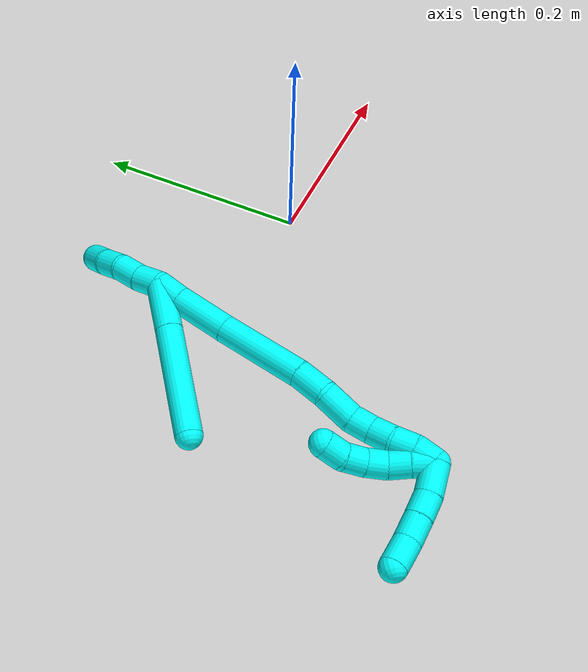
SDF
<sdf version="1.7">
 <world name="default">
  <model name="3">
   <static>0</static>
   <link name="3">
    <collision name="collision-cylinder-e_1_2_8">
     <pose>0.000381 -0.000232 0.023391 0.009909 0.016277 8.1e-05</pose>
     <geometry><cylinder><radius>0.0125</radius><length>0.046791</length></cylinder></geometry>
     <surface>
      <friction><ode><mu>1.16</mu><mu2>1.16</mu2><slip1>0</slip1><slip2>0</slip2></ode></friction>
      <contact><ode><kp>1e+06</kp><kd>1</kd><max_vel>0</max_vel><min_depth>0.001</min_depth></ode></contact>
     </surface>
    </collision>
    <visual name="visual-cylinder-e_1_2_8">
     <pose>0.000381 -0.000232 0.023391 0.009909 0.016277 8.1e-05</pose>
     <geometry><cylinder><radius>0.0125</radius><length>0.046791</length></cylinder></geometry>
     <material><ambient>0.003922 1 0.996078 1</ambient></material>
    </visual>
    <collision name="collision-cylinder-e_2_8_6">
     <pose>0.001874 -0.000468 0.098375 8.8e-05 0.021554 1e-06</pose>
     <geometry><cylinder><radius>0.0125</radius><length>0.103209</length></cylinder></geometry>
     <surface>
      <friction><ode><mu>1.16</mu><mu2>1.16</mu2><slip1>0</slip1><slip2>0</slip2></ode></friction>
      <contact><ode><kp>1e+06</kp><kd>1</kd><max_vel>0</max_vel><min_depth>0.001</min_depth></ode></contact>
     </surface>
    </collision>
    <visual name="visual-cylinder-e_2_8_6">
     <pose>0.001874 -0.000468 0.098375 8.8e-05 0.021554 1e-06</pose>
     <geometry><cylinder><radius>0.0125</radius><length>0.103209</length></cylinder></geometry>
     <material><ambient>0.003922 1 0.996078 1</ambient></material>
    </visual>
    <collision name="collision-cylinder-e_1_2_9">
     <pose>0.004599 0.007831 -0.007681 -2.34653 0.39695 -0.893407</pose>
     <geometry><cylinder><radius>0.0125</radius><length>0.023789</length></cylinder></geometry>
     <surface>
      <friction><ode><mu>1.16</mu><mu2>1.16</mu2><slip1>0</slip1><slip2>0</slip2></ode></friction>
      <contact><ode><kp>1e+06</kp><kd>1</kd><max_vel>0</max_vel><min_depth>0.001</min_depth></ode></contact>
     </surface>
    </collision>
    <visual name="visual-cylinder-e_1_2_9">
     <pose>0.004599 0.007831 -0.007681 -2.34653 0.39695 -0.893407</pose>
     <geometry><cylinder><radius>0.0125</radius><length>0.023789</length></cylinder></geometry>
     <material><ambient>0.003922 1 0.996078 1</ambient></material>
    </visual>
    <collision name="collision-cylinder-e_2_9_10">
     <pose>0.013508 0.022193 -0.024241 -2.5074 0.372867 -1.04333</pose>
     <geometry><cylinder><radius>0.0125</radius><length>0.023669</length></cylinder></geometry>
     <surface>
      <friction><ode><mu>1.16</mu><mu2>1.16</mu2><slip1>0</slip1><slip2>0</slip2></ode></friction>
      <contact><ode><kp>1e+06</kp><kd>1</kd><max_vel>0</max_vel><min_depth>0.001</min_depth></ode></contact>
     </surface>
    </collision>
    <visual name="visual-cylinder-e_2_9_10">
     <pose>0.013508 0.022193 -0.024241 -2.5074 0.372867 -1.04333</pose>
     <geometry><cylinder><radius>0.0125</radius><length>0.023669</length></cylinder></geometry>
     <material><ambient>0.003922 1 0.996078 1</ambient></material>
    </visual>
    <collision name="collision-cylinder-e_3_10_11">
     <pose>0.019561 0.037427 -0.040912 -2.30105 0.147935 -0.328643</pose>
     <geometry><cylinder><radius>0.0125</radius><length>0.023622</length></cylinder></geometry>
     <surface>
      <friction><ode><mu>1.16</mu><mu2>1.16</mu2><slip1>0</slip1><slip2>0</slip2></ode></friction>
      <contact><ode><kp>1e+06</kp><kd>1</kd><max_vel>0</max_vel><min_depth>0.001</min_depth></ode></contact>
     </surface>
    </collision>
    <visual name="visual-cylinder-e_3_10_11">
     <pose>0.019561 0.037427 -0.040912 -2.30105 0.147935 -0.328643</pose>
     <geometry><cylinder><radius>0.0125</radius><length>0.023622</length></cylinder></geometry>
     <material><ambient>0.003922 1 0.996078 1</ambient></material>
    </visual>
    <collision name="collision-cylinder-e_4_11_5">
     <pose>0.019687 0.057061 -0.058032 -2.27719 -0.111855 0.241556</pose>
     <geometry><cylinder><radius>0.0125</radius><length>0.028919</length></cylinder></geometry>
     <surface>
      <friction><ode><mu>1.16</mu><mu2>1.16</mu2><slip1>0</slip1><slip2>0</slip2></ode></friction>
      <contact><ode><kp>1e+06</kp><kd>1</kd><max_vel>0</max_vel><min_depth>0.001</min_depth></ode></contact>
     </surface>
    </collision>
    <visual name="visual-cylinder-e_4_11_5">
     <pose>0.019687 0.057061 -0.058032 -2.27719 -0.111855 0.241556</pose>
     <geometry><cylinder><radius>0.0125</radius><length>0.028919</length></cylinder></geometry>
     <material><ambient>0.003922 1 0.996078 1</ambient></material>
    </visual>
    <collision name="collision-cylinder-e_1_2_12">
     <pose>-0.006058 -0.004754 0.009944 0.445971 -0.502573 -0.116291</pose>
     <geometry><cylinder><radius>0.0125</radius><length>0.025156</length></cylinder></geometry>
     <surface>
      <friction><ode><mu>1.16</mu><mu2>1.16</mu2><slip1>0</slip1><slip2>0</slip2></ode></friction>
      <contact><ode><kp>1e+06</kp><kd>1</kd><max_vel>0</max_vel><min_depth>0.001</min_depth></ode></contact>
     </surface>
    </collision>
    <visual name="visual-cylinder-e_1_2_12">
     <pose>-0.006058 -0.004754 0.009944 0.445971 -0.502573 -0.116291</pose>
     <geometry><cylinder><radius>0.0125</radius><length>0.025156</length></cylinder></geometry>
     <material><ambient>0.003922 1 0.996078 1</ambient></material>
    </visual>
    <collision name="collision-cylinder-e_2_12_13">
     <pose>-0.024469 -0.02099 0.039849 0.522007 -0.492363 -0.13403</pose>
     <geometry><cylinder><radius>0.0125</radius><length>0.052261</length></cylinder></geometry>
     <surface>
      <friction><ode><mu>1.16</mu><mu2>1.16</mu2><slip1>0</slip1><slip2>0</slip2></ode></friction>
      <contact><ode><kp>1e+06</kp><kd>1</kd><max_vel>0</max_vel><min_depth>0.001</min_depth></ode></contact>
     </surface>
    </collision>
    <visual name="visual-cylinder-e_2_12_13">
     <pose>-0.024469 -0.02099 0.039849 0.522007 -0.492363 -0.13403</pose>
     <geometry><cylinder><radius>0.0125</radius><length>0.052261</length></cylinder></geometry>
     <material><ambient>0.003922 1 0.996078 1</ambient></material>
    </visual>
    <collision name="collision-cylinder-e_3_13_14">
     <pose>-0.055313 -0.051984 0.090573 0.565231 -0.469696 -0.138735</pose>
     <geometry><cylinder><radius>0.0125</radius><length>0.081709</length></cylinder></geometry>
     <surface>
      <friction><ode><mu>1.16</mu><mu2>1.16</mu2><slip1>0</slip1><slip2>0</slip2></ode></friction>
      <contact><ode><kp>1e+06</kp><kd>1</kd><max_vel>0</max_vel><min_depth>0.001</min_depth></ode></contact>
     </surface>
    </collision>
    <visual name="visual-cylinder-e_3_13_14">
     <pose>-0.055313 -0.051984 0.090573 0.565231 -0.469696 -0.138735</pose>
     <geometry><cylinder><radius>0.0125</radius><length>0.081709</length></cylinder></geometry>
     <material><ambient>0.003922 1 0.996078 1</ambient></material>
    </visual>
    <collision name="collision-cylinder-e_4_14_15">
     <pose>-0.079882 -0.077142 0.133162 0.445381 -0.434334 -0.099846</pose>
     <geometry><cylinder><radius>0.0125</radius><length>0.028891</length></cylinder></geometry>
     <surface>
      <friction><ode><mu>1.16</mu><mu2>1.16</mu2><slip1>0</slip1><slip2>0</slip2></ode></friction>
      <contact><ode><kp>1e+06</kp><kd>1</kd><max_vel>0</max_vel><min_depth>0.001</min_depth></ode></contact>
     </surface>
    </collision>
    <visual name="visual-cylinder-e_4_14_15">
     <pose>-0.079882 -0.077142 0.133162 0.445381 -0.434334 -0.099846</pose>
     <geometry><cylinder><radius>0.0125</radius><length>0.028891</length></cylinder></geometry>
     <material><ambient>0.003922 1 0.996078 1</ambient></material>
    </visual>
    <collision name="collision-cylinder-e_5_15_16">
     <pose>-0.095068 -0.08483 0.157013 0.168292 -0.641351 -0.056014</pose>
     <geometry><cylinder><radius>0.0125</radius><length>0.030444</length></cylinder></geometry>
     <surface>
      <friction><ode><mu>1.16</mu><mu2>1.16</mu2><slip1>0</slip1><slip2>0</slip2></ode></friction>
      <contact><ode><kp>1e+06</kp><kd>1</kd><max_vel>0</max_vel><min_depth>0.001</min_depth></ode></contact>
     </surface>
    </collision>
    <visual name="visual-cylinder-e_5_15_16">
     <pose>-0.095068 -0.08483 0.157013 0.168292 -0.641351 -0.056014</pose>
     <geometry><cylinder><radius>0.0125</radius><length>0.030444</length></cylinder></geometry>
     <material><ambient>0.003922 1 0.996078 1</ambient></material>
    </visual>
    <collision name="collision-cylinder-e_6_16_17">
     <pose>-0.110368 -0.090808 0.17606 0.510678 -0.655733 -0.177115</pose>
     <geometry><cylinder><radius>0.0125</radius><length>0.020312</length></cylinder></geometry>
     <surface>
      <friction><ode><mu>1.16</mu><mu2>1.16</mu2><slip1>0</slip1><slip2>0</slip2></ode></friction>
      <contact><ode><kp>1e+06</kp><kd>1</kd><max_vel>0</max_vel><min_depth>0.001</min_depth></ode></contact>
     </surface>
    </collision>
    <visual name="visual-cylinder-e_6_16_17">
     <pose>-0.110368 -0.090808 0.17606 0.510678 -0.655733 -0.177115</pose>
     <geometry><cylinder><radius>0.0125</radius><length>0.020312</length></cylinder></geometry>
     <material><ambient>0.003922 1 0.996078 1</ambient></material>
    </visual>
    <collision name="collision-cylinder-e_7_17_18">
     <pose>-0.12095 -0.100795 0.190243 0.701848 -0.437865 -0.162544</pose>
     <geometry><cylinder><radius>0.0125</radius><length>0.020704</length></cylinder></geometry>
     <surface>
      <friction><ode><mu>1.16</mu><mu2>1.16</mu2><slip1>0</slip1><slip2>0</slip2></ode></friction>
      <contact><ode><kp>1e+06</kp><kd>1</kd><max_vel>0</max_vel><min_depth>0.001</min_depth></ode></contact>
     </surface>
    </collision>
    <visual name="visual-cylinder-e_7_17_18">
     <pose>-0.12095 -0.100795 0.190243 0.701848 -0.437865 -0.162544</pose>
     <geometry><cylinder><radius>0.0125</radius><length>0.020704</length></cylinder></geometry>
     <material><ambient>0.003922 1 0.996078 1</ambient></material>
    </visual>
    <collision name="collision-cylinder-e_8_18_19">
     <pose>-0.131661 -0.111942 0.203499 0.696019 -0.672161 -0.252114</pose>
     <geometry><cylinder><radius>0.0125</radius><length>0.020306</length></cylinder></geometry>
     <surface>
      <friction><ode><mu>1.16</mu><mu2>1.16</mu2><slip1>0</slip1><slip2>0</slip2></ode></friction>
      <contact><ode><kp>1e+06</kp><kd>1</kd><max_vel>0</max_vel><min_depth>0.001</min_depth></ode></contact>
     </surface>
    </collision>
    <visual name="visual-cylinder-e_8_18_19">
     <pose>-0.131661 -0.111942 0.203499 0.696019 -0.672161 -0.252114</pose>
     <geometry><cylinder><radius>0.0125</radius><length>0.020306</length></cylinder></geometry>
     <material><ambient>0.003922 1 0.996078 1</ambient></material>
    </visual>
    <collision name="collision-cylinder-e_9_19_1">
     <pose>-0.143115 -0.120744 0.217476 0.439775 -0.532402 -0.121735</pose>
     <geometry><cylinder><radius>0.0125</radius><length>0.020218</length></cylinder></geometry>
     <surface>
      <friction><ode><mu>1.16</mu><mu2>1.16</mu2><slip1>0</slip1><slip2>0</slip2></ode></friction>
      <contact><ode><kp>1e+06</kp><kd>1</kd><max_vel>0</max_vel><min_depth>0.001</min_depth></ode></contact>
     </surface>
    </collision>
    <visual name="visual-cylinder-e_9_19_1">
     <pose>-0.143115 -0.120744 0.217476 0.439775 -0.532402 -0.121735</pose>
     <geometry><cylinder><radius>0.0125</radius><length>0.020218</length></cylinder></geometry>
     <material><ambient>0.003922 1 0.996078 1</ambient></material>
    </visual>
    <collision name="collision-cylinder-e_1_1_20">
     <pose>-0.143032 -0.120098 0.238233 -0.326084 0.36629 -0.06092</pose>
     <geometry><cylinder><radius>0.0125</radius><length>0.029116</length></cylinder></geometry>
     <surface>
      <friction><ode><mu>1.16</mu><mu2>1.16</mu2><slip1>0</slip1><slip2>0</slip2></ode></friction>
      <contact><ode><kp>1e+06</kp><kd>1</kd><max_vel>0</max_vel><min_depth>0.001</min_depth></ode></contact>
     </surface>
    </collision>
    <visual name="visual-cylinder-e_1_1_20">
     <pose>-0.143032 -0.120098 0.238233 -0.326084 0.36629 -0.06092</pose>
     <geometry><cylinder><radius>0.0125</radius><length>0.029116</length></cylinder></geometry>
     <material><ambient>0.003922 1 0.996078 1</ambient></material>
    </visual>
    <collision name="collision-cylinder-e_2_20_21">
     <pose>-0.13185 -0.112747 0.259695 -0.335808 0.580752 -0.101214</pose>
     <geometry><cylinder><radius>0.0125</radius><length>0.021754</length></cylinder></geometry>
     <surface>
      <friction><ode><mu>1.16</mu><mu2>1.16</mu2><slip1>0</slip1><slip2>0</slip2></ode></friction>
      <contact><ode><kp>1e+06</kp><kd>1</kd><max_vel>0</max_vel><min_depth>0.001</min_depth></ode></contact>
     </surface>
    </collision>
    <visual name="visual-cylinder-e_2_20_21">
     <pose>-0.13185 -0.112747 0.259695 -0.335808 0.580752 -0.101214</pose>
     <geometry><cylinder><radius>0.0125</radius><length>0.021754</length></cylinder></geometry>
     <material><ambient>0.003922 1 0.996078 1</ambient></material>
    </visual>
    <collision name="collision-cylinder-e_3_21_22">
     <pose>-0.119513 -0.106224 0.277233 -0.375265 0.5848 -0.114186</pose>
     <geometry><cylinder><radius>0.0125</radius><length>0.023078</length></cylinder></geometry>
     <surface>
      <friction><ode><mu>1.16</mu><mu2>1.16</mu2><slip1>0</slip1><slip2>0</slip2></ode></friction>
      <contact><ode><kp>1e+06</kp><kd>1</kd><max_vel>0</max_vel><min_depth>0.001</min_depth></ode></contact>
     </surface>
    </collision>
    <visual name="visual-cylinder-e_3_21_22">
     <pose>-0.119513 -0.106224 0.277233 -0.375265 0.5848 -0.114186</pose>
     <geometry><cylinder><radius>0.0125</radius><length>0.023078</length></cylinder></geometry>
     <material><ambient>0.003922 1 0.996078 1</ambient></material>
    </visual>
    <collision name="collision-cylinder-e_4_22_4">
     <pose>-0.104574 -0.100291 0.295696 -0.247804 0.717932 -0.093393</pose>
     <geometry><cylinder><radius>0.0125</radius><length>0.026052</length></cylinder></geometry>
     <surface>
      <friction><ode><mu>1.16</mu><mu2>1.16</mu2><slip1>0</slip1><slip2>0</slip2></ode></friction>
      <contact><ode><kp>1e+06</kp><kd>1</kd><max_vel>0</max_vel><min_depth>0.001</min_depth></ode></contact>
     </surface>
    </collision>
    <visual name="visual-cylinder-e_4_22_4">
     <pose>-0.104574 -0.100291 0.295696 -0.247804 0.717932 -0.093393</pose>
     <geometry><cylinder><radius>0.0125</radius><length>0.026052</length></cylinder></geometry>
     <material><ambient>0.003922 1 0.996078 1</ambient></material>
    </visual>
    <collision name="collision-cylinder-e_1_1_23">
     <pose>-0.14054 -0.118488 0.223108 -1.93144 0.879694 -1.19493</pose>
     <geometry><cylinder><radius>0.0125</radius><length>0.02</length></cylinder></geometry>
     <surface>
      <friction><ode><mu>1.16</mu><mu2>1.16</mu2><slip1>0</slip1><slip2>0</slip2></ode></friction>
      <contact><ode><kp>1e+06</kp><kd>1</kd><max_vel>0</max_vel><min_depth>0.001</min_depth></ode></contact>
     </surface>
    </collision>
    <visual name="visual-cylinder-e_1_1_23">
     <pose>-0.14054 -0.118488 0.223108 -1.93144 0.879694 -1.19493</pose>
     <geometry><cylinder><radius>0.0125</radius><length>0.02</length></cylinder></geometry>
     <material><ambient>0.003922 1 0.996078 1</ambient></material>
    </visual>
    <collision name="collision-cylinder-e_2_23_24">
     <pose>-0.125406 -0.106072 0.219076 -1.84046 0.837422 -1.05821</pose>
     <geometry><cylinder><radius>0.0125</radius><length>0.02</length></cylinder></geometry>
     <surface>
      <friction><ode><mu>1.16</mu><mu2>1.16</mu2><slip1>0</slip1><slip2>0</slip2></ode></friction>
      <contact><ode><kp>1e+06</kp><kd>1</kd><max_vel>0</max_vel><min_depth>0.001</min_depth></ode></contact>
     </surface>
    </collision>
    <visual name="visual-cylinder-e_2_23_24">
     <pose>-0.125406 -0.106072 0.219076 -1.84046 0.837422 -1.05821</pose>
     <geometry><cylinder><radius>0.0125</radius><length>0.02</length></cylinder></geometry>
     <material><ambient>0.003922 1 0.996078 1</ambient></material>
    </visual>
    <collision name="collision-cylinder-e_3_24_25">
     <pose>-0.109138 -0.095818 0.214568 -2.19251 1.08406 -1.72909</pose>
     <geometry><cylinder><radius>0.0125</radius><length>0.02</length></cylinder></geometry>
     <surface>
      <friction><ode><mu>1.16</mu><mu2>1.16</mu2><slip1>0</slip1><slip2>0</slip2></ode></friction>
      <contact><ode><kp>1e+06</kp><kd>1</kd><max_vel>0</max_vel><min_depth>0.001</min_depth></ode></contact>
     </surface>
    </collision>
    <visual name="visual-cylinder-e_3_24_25">
     <pose>-0.109138 -0.095818 0.214568 -2.19251 1.08406 -1.72909</pose>
     <geometry><cylinder><radius>0.0125</radius><length>0.02</length></cylinder></geometry>
     <material><ambient>0.003922 1 0.996078 1</ambient></material>
    </visual>
    <collision name="collision-cylinder-e_4_25_26">
     <pose>-0.090798 -0.090715 0.20901 -2.71109 1.25369 -2.55525</pose>
     <geometry><cylinder><radius>0.0125</radius><length>0.02</length></cylinder></geometry>
     <surface>
      <friction><ode><mu>1.16</mu><mu2>1.16</mu2><slip1>0</slip1><slip2>0</slip2></ode></friction>
      <contact><ode><kp>1e+06</kp><kd>1</kd><max_vel>0</max_vel><min_depth>0.001</min_depth></ode></contact>
     </surface>
    </collision>
    <visual name="visual-cylinder-e_4_25_26">
     <pose>-0.090798 -0.090715 0.20901 -2.71109 1.25369 -2.55525</pose>
     <geometry><cylinder><radius>0.0125</radius><length>0.02</length></cylinder></geometry>
     <material><ambient>0.003922 1 0.996078 1</ambient></material>
    </visual>
    <collision name="collision-cylinder-e_5_26_3">
     <pose>-0.072976 -0.08935 0.20063 -3.13012 0.982782 -3.12015</pose>
     <geometry><cylinder><radius>0.0125</radius><length>0.02</length></cylinder></geometry>
     <surface>
      <friction><ode><mu>1.16</mu><mu2>1.16</mu2><slip1>0</slip1><slip2>0</slip2></ode></friction>
      <contact><ode><kp>1e+06</kp><kd>1</kd><max_vel>0</max_vel><min_depth>0.001</min_depth></ode></contact>
     </surface>
    </collision>
    <visual name="visual-cylinder-e_5_26_3">
     <pose>-0.072976 -0.08935 0.20063 -3.13012 0.982782 -3.12015</pose>
     <geometry><cylinder><radius>0.0125</radius><length>0.02</length></cylinder></geometry>
     <material><ambient>0.003922 1 0.996078 1</ambient></material>
    </visual>
    <collision name="collision-sphere-3">
     <pose>-0.064656 -0.089286 0.195083 0 -0 0</pose>
     <geometry><sphere><radius>0.0125</radius></sphere></geometry>
     <surface>
      <friction><ode><mu>1.16</mu><mu2>1.16</mu2><slip1>0</slip1><slip2>0</slip2></ode></friction>
      <contact><ode><kp>1e+06</kp><kd>1</kd><max_vel>0</max_vel><min_depth>0.001</min_depth></ode></contact>
     </surface>
    </collision>
    <visual name="visual-sphere-3">
     <pose>-0.064656 -0.089286 0.195083 0 -0 0</pose>
     <geometry><sphere><radius>0.0125</radius></sphere></geometry>
     <material><ambient>0.003922 1 0.996078 1</ambient></material>
    </visual>
    <collision name="collision-sphere-26">
     <pose>-0.081297 -0.089413 0.206177 0 -0 0</pose>
     <geometry><sphere><radius>0.0125</radius></sphere></geometry>
     <surface>
      <friction><ode><mu>1.16</mu><mu2>1.16</mu2><slip1>0</slip1><slip2>0</slip2></ode></friction>
      <contact><ode><kp>1e+06</kp><kd>1</kd><max_vel>0</max_vel><min_depth>0.001</min_depth></ode></contact>
     </surface>
    </collision>
    <visual name="visual-sphere-26">
     <pose>-0.081297 -0.089413 0.206177 0 -0 0</pose>
     <geometry><sphere><radius>0.0125</radius></sphere></geometry>
     <material><ambient>0.003922 1 0.996078 1</ambient></material>
    </visual>
    <collision name="collision-sphere-25">
     <pose>-0.100299 -0.092016 0.211844 0 -0 0</pose>
     <geometry><sphere><radius>0.0125</radius></sphere></geometry>
     <surface>
      <friction><ode><mu>1.16</mu><mu2>1.16</mu2><slip1>0</slip1><slip2>0</slip2></ode></friction>
      <contact><ode><kp>1e+06</kp><kd>1</kd><max_vel>0</max_vel><min_depth>0.001</min_depth></ode></contact>
     </surface>
    </collision>
    <visual name="visual-sphere-25">
     <pose>-0.100299 -0.092016 0.211844 0 -0 0</pose>
     <geometry><sphere><radius>0.0125</radius></sphere></geometry>
     <material><ambient>0.003922 1 0.996078 1</ambient></material>
    </visual>
    <collision name="collision-sphere-24">
     <pose>-0.117977 -0.09962 0.217293 0 -0 0</pose>
     <geometry><sphere><radius>0.0125</radius></sphere></geometry>
     <surface>
      <friction><ode><mu>1.16</mu><mu2>1.16</mu2><slip1>0</slip1><slip2>0</slip2></ode></friction>
      <contact><ode><kp>1e+06</kp><kd>1</kd><max_vel>0</max_vel><min_depth>0.001</min_depth></ode></contact>
     </surface>
    </collision>
    <visual name="visual-sphere-24">
     <pose>-0.117977 -0.09962 0.217293 0 -0 0</pose>
     <geometry><sphere><radius>0.0125</radius></sphere></geometry>
     <material><ambient>0.003922 1 0.996078 1</ambient></material>
    </visual>
    <collision name="collision-sphere-23">
     <pose>-0.132835 -0.112524 0.220859 0 -0 0</pose>
     <geometry><sphere><radius>0.0125</radius></sphere></geometry>
     <surface>
      <friction><ode><mu>1.16</mu><mu2>1.16</mu2><slip1>0</slip1><slip2>0</slip2></ode></friction>
      <contact><ode><kp>1e+06</kp><kd>1</kd><max_vel>0</max_vel><min_depth>0.001</min_depth></ode></contact>
     </surface>
    </collision>
    <visual name="visual-sphere-23">
     <pose>-0.132835 -0.112524 0.220859 0 -0 0</pose>
     <geometry><sphere><radius>0.0125</radius></sphere></geometry>
     <material><ambient>0.003922 1 0.996078 1</ambient></material>
    </visual>
    <collision name="collision-sphere-4">
     <pose>-0.096005 -0.097885 0.305207 0 -0 0</pose>
     <geometry><sphere><radius>0.0125</radius></sphere></geometry>
     <surface>
      <friction><ode><mu>1.16</mu><mu2>1.16</mu2><slip1>0</slip1><slip2>0</slip2></ode></friction>
      <contact><ode><kp>1e+06</kp><kd>1</kd><max_vel>0</max_vel><min_depth>0.001</min_depth></ode></contact>
     </surface>
    </collision>
    <visual name="visual-sphere-4">
     <pose>-0.096005 -0.097885 0.305207 0 -0 0</pose>
     <geometry><sphere><radius>0.0125</radius></sphere></geometry>
     <material><ambient>0.003922 1 0.996078 1</ambient></material>
    </visual>
    <collision name="collision-sphere-22">
     <pose>-0.113143 -0.102697 0.286185 0 -0 0</pose>
     <geometry><sphere><radius>0.0125</radius></sphere></geometry>
     <surface>
      <friction><ode><mu>1.16</mu><mu2>1.16</mu2><slip1>0</slip1><slip2>0</slip2></ode></friction>
      <contact><ode><kp>1e+06</kp><kd>1</kd><max_vel>0</max_vel><min_depth>0.001</min_depth></ode></contact>
     </surface>
    </collision>
    <visual name="visual-sphere-22">
     <pose>-0.113143 -0.102697 0.286185 0 -0 0</pose>
     <geometry><sphere><radius>0.0125</radius></sphere></geometry>
     <material><ambient>0.003922 1 0.996078 1</ambient></material>
    </visual>
    <collision name="collision-sphere-21">
     <pose>-0.125883 -0.10975 0.268281 0 -0 0</pose>
     <geometry><sphere><radius>0.0125</radius></sphere></geometry>
     <surface>
      <friction><ode><mu>1.16</mu><mu2>1.16</mu2><slip1>0</slip1><slip2>0</slip2></ode></friction>
      <contact><ode><kp>1e+06</kp><kd>1</kd><max_vel>0</max_vel><min_depth>0.001</min_depth></ode></contact>
     </surface>
    </collision>
    <visual name="visual-sphere-21">
     <pose>-0.125883 -0.10975 0.268281 0 -0 0</pose>
     <geometry><sphere><radius>0.0125</radius></sphere></geometry>
     <material><ambient>0.003922 1 0.996078 1</ambient></material>
    </visual>
    <collision name="collision-sphere-20">
     <pose>-0.137818 -0.115744 0.251109 0 -0 0</pose>
     <geometry><sphere><radius>0.0125</radius></sphere></geometry>
     <surface>
      <friction><ode><mu>1.16</mu><mu2>1.16</mu2><slip1>0</slip1><slip2>0</slip2></ode></friction>
      <contact><ode><kp>1e+06</kp><kd>1</kd><max_vel>0</max_vel><min_depth>0.001</min_depth></ode></contact>
     </surface>
    </collision>
    <visual name="visual-sphere-20">
     <pose>-0.137818 -0.115744 0.251109 0 -0 0</pose>
     <geometry><sphere><radius>0.0125</radius></sphere></geometry>
     <material><ambient>0.003922 1 0.996078 1</ambient></material>
    </visual>
    <collision name="collision-sphere-11">
     <pose>0.021301 0.04613 -0.048705 0 -0 0</pose>
     <geometry><sphere><radius>0.0125</radius></sphere></geometry>
     <surface>
      <friction><ode><mu>1.16</mu><mu2>1.16</mu2><slip1>0</slip1><slip2>0</slip2></ode></friction>
      <contact><ode><kp>1e+06</kp><kd>1</kd><max_vel>0</max_vel><min_depth>0.001</min_depth></ode></contact>
     </surface>
    </collision>
    <visual name="visual-sphere-11">
     <pose>0.021301 0.04613 -0.048705 0 -0 0</pose>
     <geometry><sphere><radius>0.0125</radius></sphere></geometry>
     <material><ambient>0.003922 1 0.996078 1</ambient></material>
    </visual>
    <collision name="collision-sphere-10">
     <pose>0.01782 0.028724 -0.03312 0 -0 0</pose>
     <geometry><sphere><radius>0.0125</radius></sphere></geometry>
     <surface>
      <friction><ode><mu>1.16</mu><mu2>1.16</mu2><slip1>0</slip1><slip2>0</slip2></ode></friction>
      <contact><ode><kp>1e+06</kp><kd>1</kd><max_vel>0</max_vel><min_depth>0.001</min_depth></ode></contact>
     </surface>
    </collision>
    <visual name="visual-sphere-10">
     <pose>0.01782 0.028724 -0.03312 0 -0 0</pose>
     <geometry><sphere><radius>0.0125</radius></sphere></geometry>
     <material><ambient>0.003922 1 0.996078 1</ambient></material>
    </visual>
    <collision name="collision-sphere-6">
     <pose>0.002986 -0.000473 0.149968 0 -0 0</pose>
     <geometry><sphere><radius>0.0125</radius></sphere></geometry>
     <surface>
      <friction><ode><mu>1.16</mu><mu2>1.16</mu2><slip1>0</slip1><slip2>0</slip2></ode></friction>
      <contact><ode><kp>1e+06</kp><kd>1</kd><max_vel>0</max_vel><min_depth>0.001</min_depth></ode></contact>
     </surface>
    </collision>
    <visual name="visual-sphere-6">
     <pose>0.002986 -0.000473 0.149968 0 -0 0</pose>
     <geometry><sphere><radius>0.0125</radius></sphere></geometry>
     <material><ambient>0.003922 1 0.996078 1</ambient></material>
    </visual>
    <collision name="collision-sphere-9">
     <pose>0.009197 0.015663 -0.015363 0 -0 0</pose>
     <geometry><sphere><radius>0.0125</radius></sphere></geometry>
     <surface>
      <friction><ode><mu>1.16</mu><mu2>1.16</mu2><slip1>0</slip1><slip2>0</slip2></ode></friction>
      <contact><ode><kp>1e+06</kp><kd>1</kd><max_vel>0</max_vel><min_depth>0.001</min_depth></ode></contact>
     </surface>
    </collision>
    <visual name="visual-sphere-9">
     <pose>0.009197 0.015663 -0.015363 0 -0 0</pose>
     <geometry><sphere><radius>0.0125</radius></sphere></geometry>
     <material><ambient>0.003922 1 0.996078 1</ambient></material>
    </visual>
    <collision name="collision-sphere-2">
     <geometry><sphere><radius>0.0125</radius></sphere></geometry>
     <surface>
      <friction><ode><mu>1.16</mu><mu2>1.16</mu2><slip1>0</slip1><slip2>0</slip2></ode></friction>
      <contact><ode><kp>1e+06</kp><kd>1</kd><max_vel>0</max_vel><min_depth>0.001</min_depth></ode></contact>
     </surface>
    </collision>
    <visual name="visual-sphere-2">
     <geometry><sphere><radius>0.0125</radius></sphere></geometry>
     <material><ambient>0.003922 1 0.996078 1</ambient></material>
    </visual>
    <collision name="collision-sphere-19">
     <pose>-0.137983 -0.117036 0.209595 0 -0 0</pose>
     <geometry><sphere><radius>0.0125</radius></sphere></geometry>
     <surface>
      <friction><ode><mu>1.16</mu><mu2>1.16</mu2><slip1>0</slip1><slip2>0</slip2></ode></friction>
      <contact><ode><kp>1e+06</kp><kd>1</kd><max_vel>0</max_vel><min_depth>0.001</min_depth></ode></contact>
     </surface>
    </collision>
    <visual name="visual-sphere-19">
     <pose>-0.137983 -0.117036 0.209595 0 -0 0</pose>
     <geometry><sphere><radius>0.0125</radius></sphere></geometry>
     <material><ambient>0.003922 1 0.996078 1</ambient></material>
    </visual>
    <collision name="collision-sphere-8">
     <pose>0.000762 -0.000464 0.046782 0 -0 0</pose>
     <geometry><sphere><radius>0.0125</radius></sphere></geometry>
     <surface>
      <friction><ode><mu>1.16</mu><mu2>1.16</mu2><slip1>0</slip1><slip2>0</slip2></ode></friction>
      <contact><ode><kp>1e+06</kp><kd>1</kd><max_vel>0</max_vel><min_depth>0.001</min_depth></ode></contact>
     </surface>
    </collision>
    <visual name="visual-sphere-8">
     <pose>0.000762 -0.000464 0.046782 0 -0 0</pose>
     <geometry><sphere><radius>0.0125</radius></sphere></geometry>
     <material><ambient>0.003922 1 0.996078 1</ambient></material>
    </visual>
    <collision name="collision-sphere-5">
     <pose>0.018073 0.067992 -0.067359 0 -0 0</pose>
     <geometry><sphere><radius>0.0125</radius></sphere></geometry>
     <surface>
      <friction><ode><mu>1.16</mu><mu2>1.16</mu2><slip1>0</slip1><slip2>0</slip2></ode></friction>
      <contact><ode><kp>1e+06</kp><kd>1</kd><max_vel>0</max_vel><min_depth>0.001</min_depth></ode></contact>
     </surface>
    </collision>
    <visual name="visual-sphere-5">
     <pose>0.018073 0.067992 -0.067359 0 -0 0</pose>
     <geometry><sphere><radius>0.0125</radius></sphere></geometry>
     <material><ambient>0.003922 1 0.996078 1</ambient></material>
    </visual>
    <collision name="collision-sphere-12">
     <pose>-0.012117 -0.009509 0.019889 0 -0 0</pose>
     <geometry><sphere><radius>0.0125</radius></sphere></geometry>
     <surface>
      <friction><ode><mu>1.16</mu><mu2>1.16</mu2><slip1>0</slip1><slip2>0</slip2></ode></friction>
      <contact><ode><kp>1e+06</kp><kd>1</kd><max_vel>0</max_vel><min_depth>0.001</min_depth></ode></contact>
     </surface>
    </collision>
    <visual name="visual-sphere-12">
     <pose>-0.012117 -0.009509 0.019889 0 -0 0</pose>
     <geometry><sphere><radius>0.0125</radius></sphere></geometry>
     <material><ambient>0.003922 1 0.996078 1</ambient></material>
    </visual>
    <collision name="collision-sphere-13">
     <pose>-0.036821 -0.032472 0.059809 0 -0 0</pose>
     <geometry><sphere><radius>0.0125</radius></sphere></geometry>
     <surface>
      <friction><ode><mu>1.16</mu><mu2>1.16</mu2><slip1>0</slip1><slip2>0</slip2></ode></friction>
      <contact><ode><kp>1e+06</kp><kd>1</kd><max_vel>0</max_vel><min_depth>0.001</min_depth></ode></contact>
     </surface>
    </collision>
    <visual name="visual-sphere-13">
     <pose>-0.036821 -0.032472 0.059809 0 -0 0</pose>
     <geometry><sphere><radius>0.0125</radius></sphere></geometry>
     <material><ambient>0.003922 1 0.996078 1</ambient></material>
    </visual>
    <collision name="collision-sphere-14">
     <pose>-0.073804 -0.071497 0.121337 0 -0 0</pose>
     <geometry><sphere><radius>0.0125</radius></sphere></geometry>
     <surface>
      <friction><ode><mu>1.16</mu><mu2>1.16</mu2><slip1>0</slip1><slip2>0</slip2></ode></friction>
      <contact><ode><kp>1e+06</kp><kd>1</kd><max_vel>0</max_vel><min_depth>0.001</min_depth></ode></contact>
     </surface>
    </collision>
    <visual name="visual-sphere-14">
     <pose>-0.073804 -0.071497 0.121337 0 -0 0</pose>
     <geometry><sphere><radius>0.0125</radius></sphere></geometry>
     <material><ambient>0.003922 1 0.996078 1</ambient></material>
    </visual>
    <collision name="collision-sphere-15">
     <pose>-0.085961 -0.082787 0.144988 0 -0 0</pose>
     <geometry><sphere><radius>0.0125</radius></sphere></geometry>
     <surface>
      <friction><ode><mu>1.16</mu><mu2>1.16</mu2><slip1>0</slip1><slip2>0</slip2></ode></friction>
      <contact><ode><kp>1e+06</kp><kd>1</kd><max_vel>0</max_vel><min_depth>0.001</min_depth></ode></contact>
     </surface>
    </collision>
    <visual name="visual-sphere-15">
     <pose>-0.085961 -0.082787 0.144988 0 -0 0</pose>
     <geometry><sphere><radius>0.0125</radius></sphere></geometry>
     <material><ambient>0.003922 1 0.996078 1</ambient></material>
    </visual>
    <collision name="collision-sphere-16">
     <pose>-0.104175 -0.086873 0.169038 0 -0 0</pose>
     <geometry><sphere><radius>0.0125</radius></sphere></geometry>
     <surface>
      <friction><ode><mu>1.16</mu><mu2>1.16</mu2><slip1>0</slip1><slip2>0</slip2></ode></friction>
      <contact><ode><kp>1e+06</kp><kd>1</kd><max_vel>0</max_vel><min_depth>0.001</min_depth></ode></contact>
     </surface>
    </collision>
    <visual name="visual-sphere-16">
     <pose>-0.104175 -0.086873 0.169038 0 -0 0</pose>
     <geometry><sphere><radius>0.0125</radius></sphere></geometry>
     <material><ambient>0.003922 1 0.996078 1</ambient></material>
    </visual>
    <collision name="collision-sphere-17">
     <pose>-0.11656 -0.094742 0.183083 0 -0 0</pose>
     <geometry><sphere><radius>0.0125</radius></sphere></geometry>
     <surface>
      <friction><ode><mu>1.16</mu><mu2>1.16</mu2><slip1>0</slip1><slip2>0</slip2></ode></friction>
      <contact><ode><kp>1e+06</kp><kd>1</kd><max_vel>0</max_vel><min_depth>0.001</min_depth></ode></contact>
     </surface>
    </collision>
    <visual name="visual-sphere-17">
     <pose>-0.11656 -0.094742 0.183083 0 -0 0</pose>
     <geometry><sphere><radius>0.0125</radius></sphere></geometry>
     <material><ambient>0.003922 1 0.996078 1</ambient></material>
    </visual>
    <collision name="collision-sphere-18">
     <pose>-0.125339 -0.106848 0.197402 0 -0 0</pose>
     <geometry><sphere><radius>0.0125</radius></sphere></geometry>
     <surface>
      <friction><ode><mu>1.16</mu><mu2>1.16</mu2><slip1>0</slip1><slip2>0</slip2></ode></friction>
      <contact><ode><kp>1e+06</kp><kd>1</kd><max_vel>0</max_vel><min_depth>0.001</min_depth></ode></contact>
     </surface>
    </collision>
    <visual name="visual-sphere-18">
     <pose>-0.125339 -0.106848 0.197402 0 -0 0</pose>
     <geometry><sphere><radius>0.0125</radius></sphere></geometry>
     <material><ambient>0.003922 1 0.996078 1</ambient></material>
    </visual>
    <collision name="collision-sphere-1">
     <pose>-0.148246 -0.124452 0.225357 0 -0 0</pose>
     <geometry><sphere><radius>0.0125</radius></sphere></geometry>
     <surface>
      <friction><ode><mu>1.16</mu><mu2>1.16</mu2><slip1>0</slip1><slip2>0</slip2></ode></friction>
      <contact><ode><kp>1e+06</kp><kd>1</kd><max_vel>0</max_vel><min_depth>0.001</min_depth></ode></contact>
     </surface>
    </collision>
    <visual name="visual-sphere-1">
     <pose>-0.148246 -0.124452 0.225357 0 -0 0</pose>
     <geometry><sphere><radius>0.0125</radius></sphere></geometry>
     <material><ambient>0.003922 1 0.996078 1</ambient></material>
    </visual>
    <inertial>
     <pose>-0.057449 -0.049009 0.120355 0 -0 0</pose>
     <mass>0.75</mass>
     <inertia><ixx>0.000173</ixx><ixy>0</ixy><ixz>0</ixz><iyy>0.00017</iyy><iyz>0</iyz><izz>7.3e-05</izz></inertia>
    </inertial>
   </link>
   <pose>-0.162705 0.055369 0.045011 -1.8341 -0.509069 2.36904</pose>
  </model>
 </world>
</sdf>
